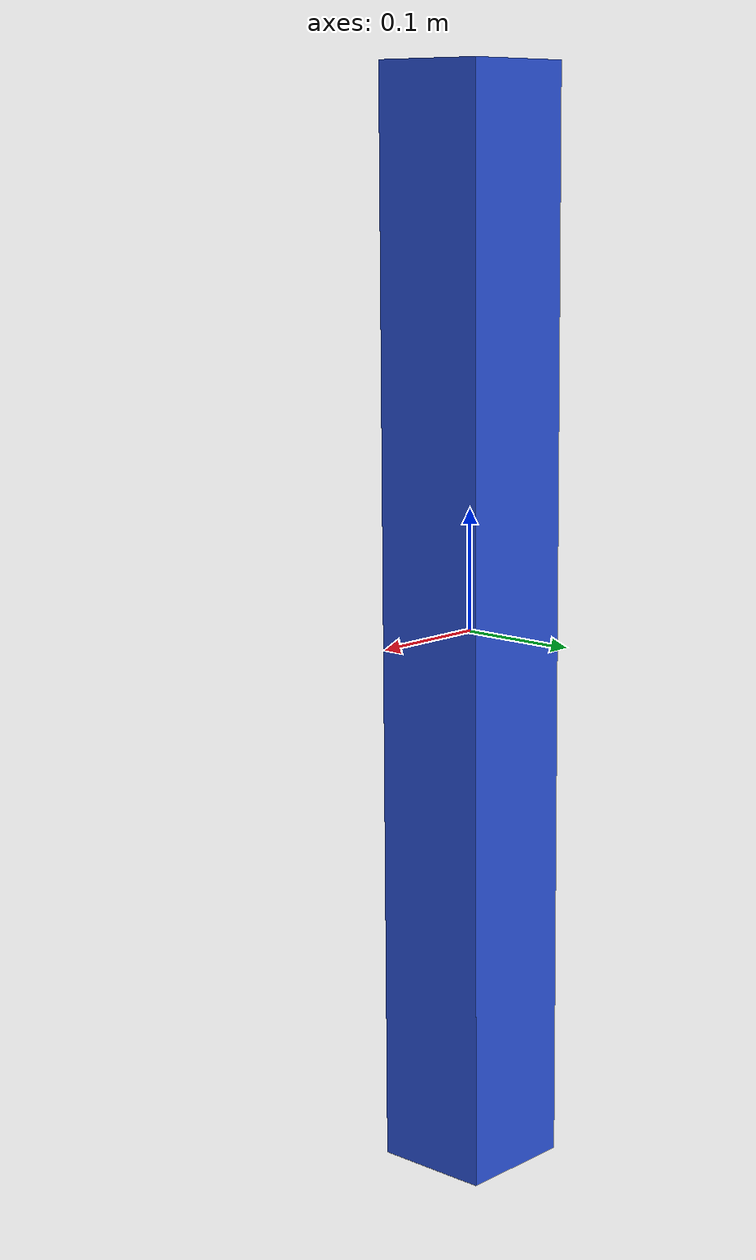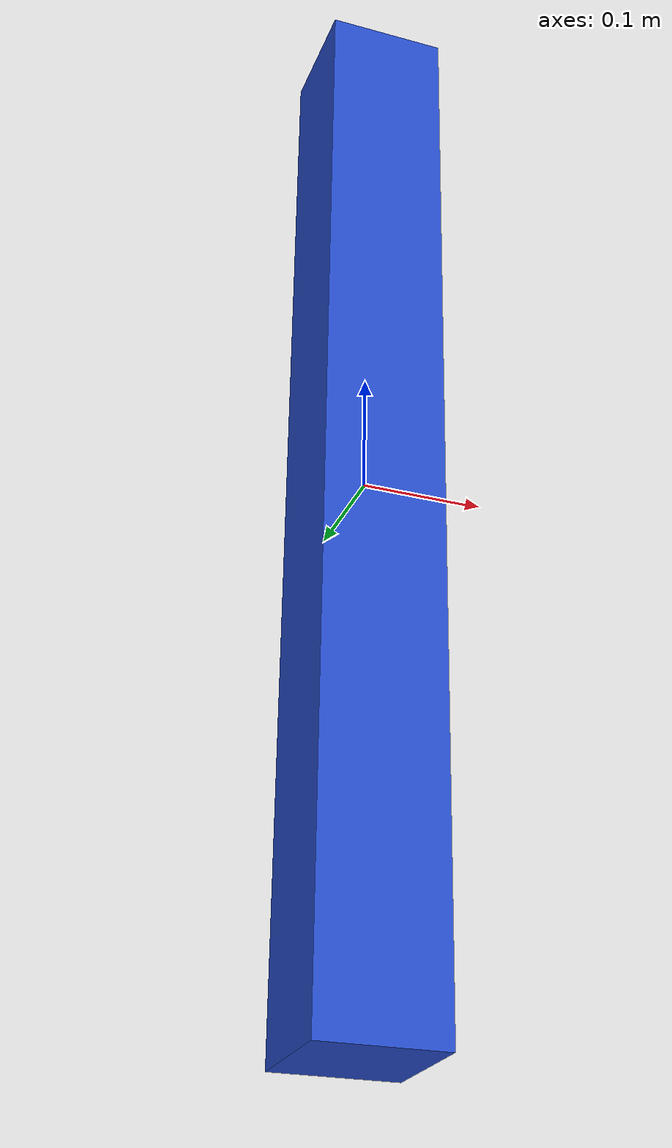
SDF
<?xml version="1.0" ?>
<sdf version="1.6">
  <model name="regolo9">
    <static>true</static>
    <link name="link">
      <collision name="collision">
        <geometry>
          <mesh>
            <uri>model://regolo9/meshes/regolo9.stl</uri>
            <scale>0.1 0.1 0.1</scale>
          </mesh>
        </geometry>
      </collision>
      <visual name="visual">
        <geometry>
          <mesh>
            <uri>model://regolo9/meshes/regolo9.stl</uri>
            <scale>0.1 0.1 0.1</scale>
          </mesh>
        </geometry>
        <material>
          <script>
            <uri>file://media/materials/scripts/gazebo.material</uri>
            <name>Gazebo/Blue</name> <!-- Change this to the desired color -->
          </script>
        </material>
      </visual>
    </link>
  </model>
</sdf>
